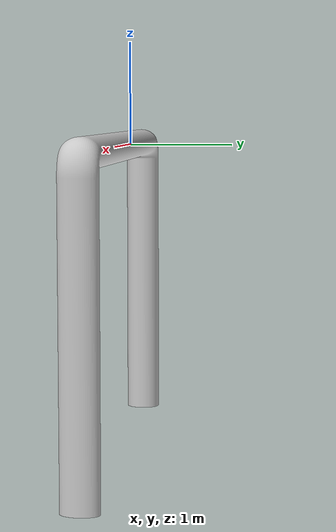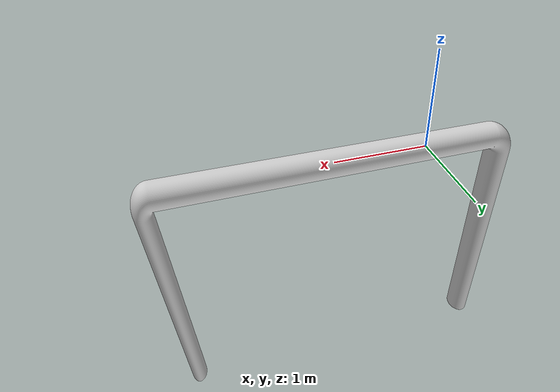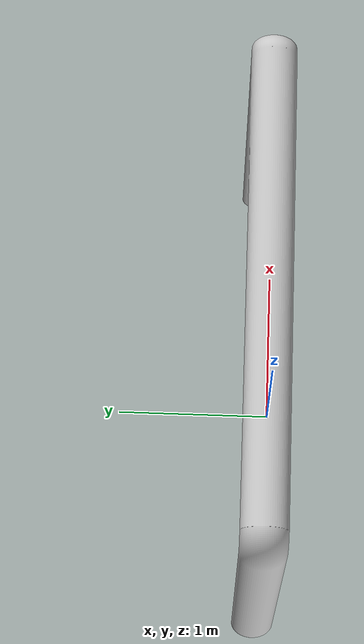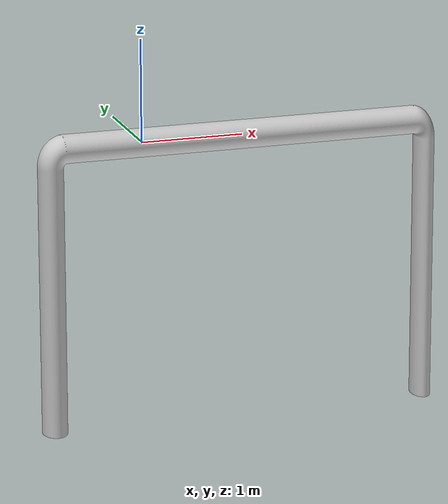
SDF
<?xml version="1.0"?>
<sdf version="1.7">
  <model name="pipe7">
    <link name="link">
      <collision name="collision">
        <geometry>
          <mesh>
            <uri>model://pipe9/meshes/pipe9.dae</uri>
          </mesh>
        </geometry>
      </collision>
      <visual name="visual">
        <geometry>
          <mesh>
            <uri>model://pipe9/meshes/pipe9.dae</uri>
          </mesh>
        </geometry>
      </visual>
    </link>
  </model>
</sdf>
